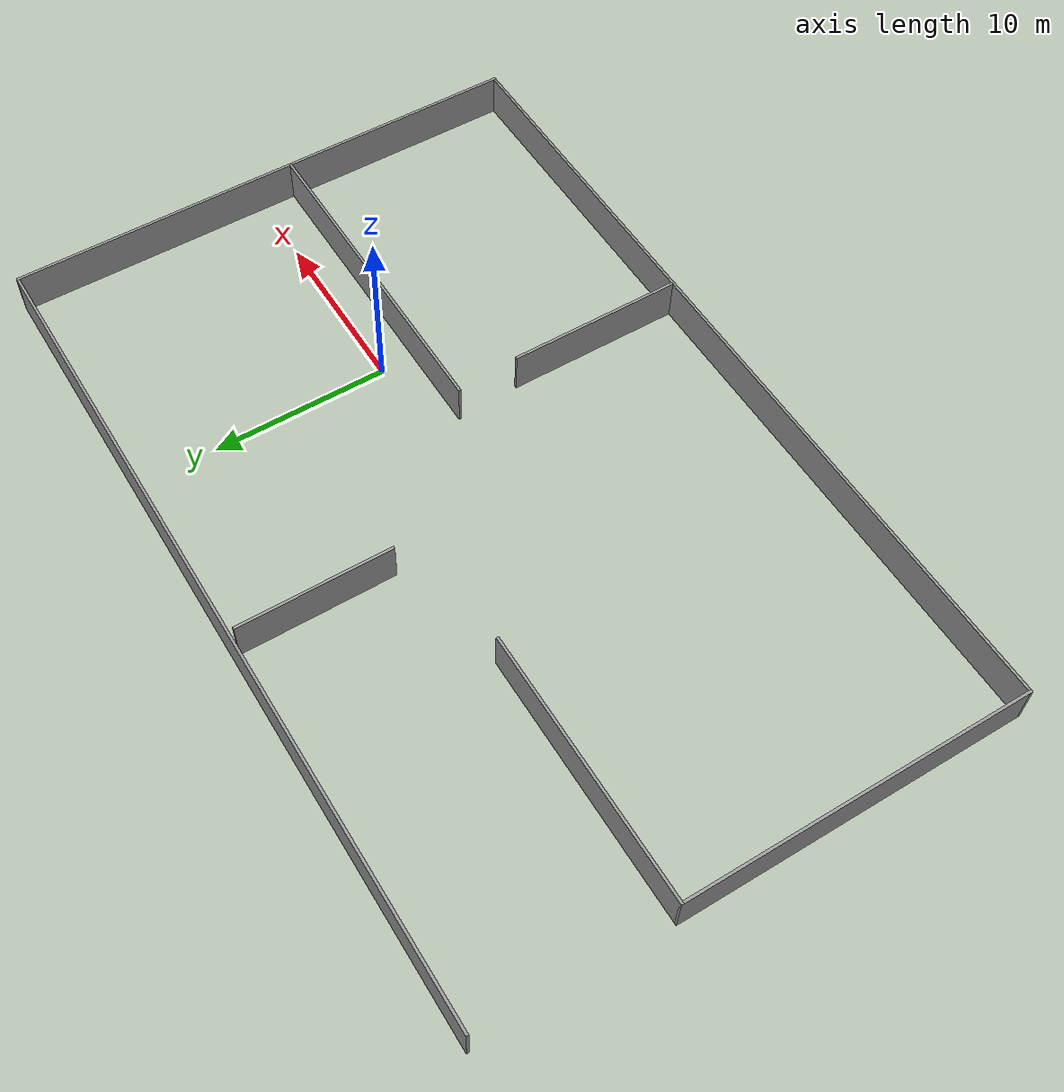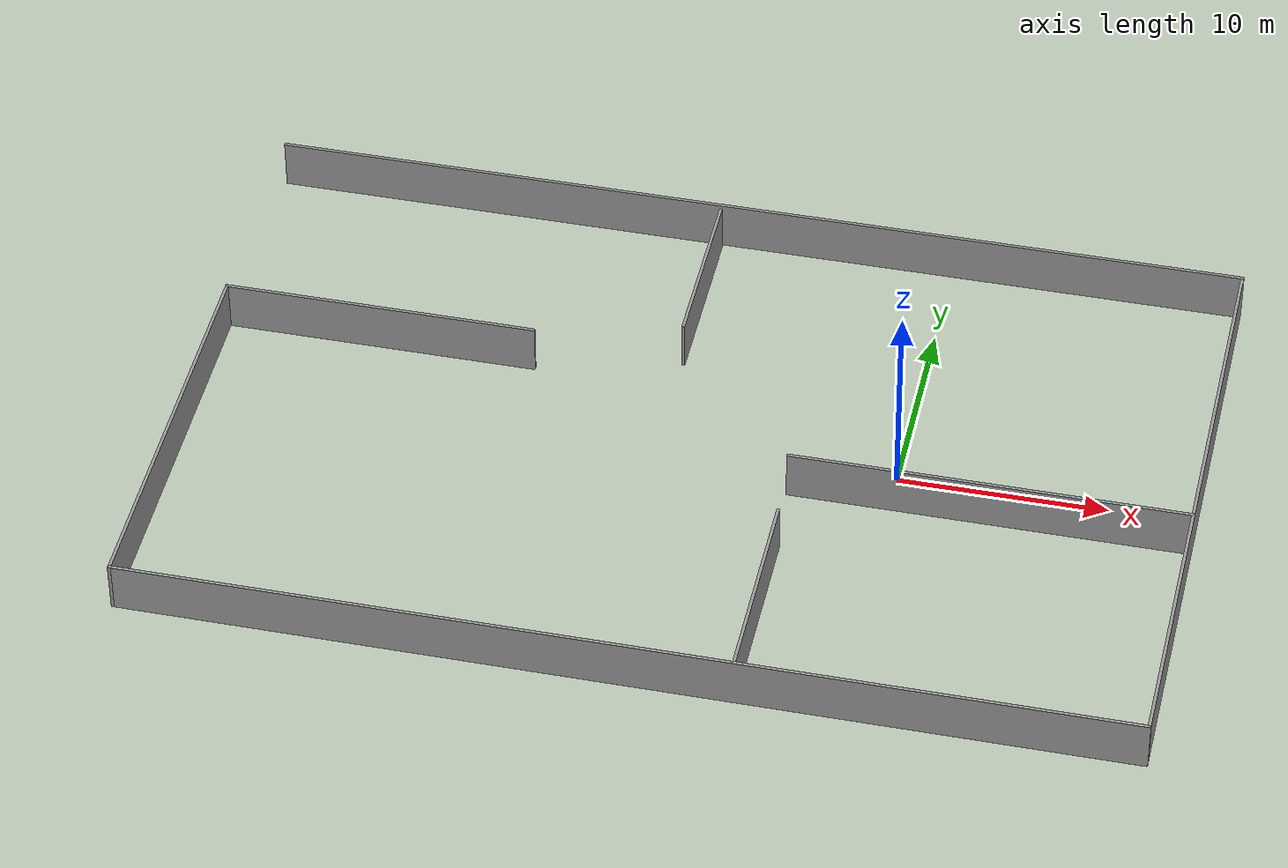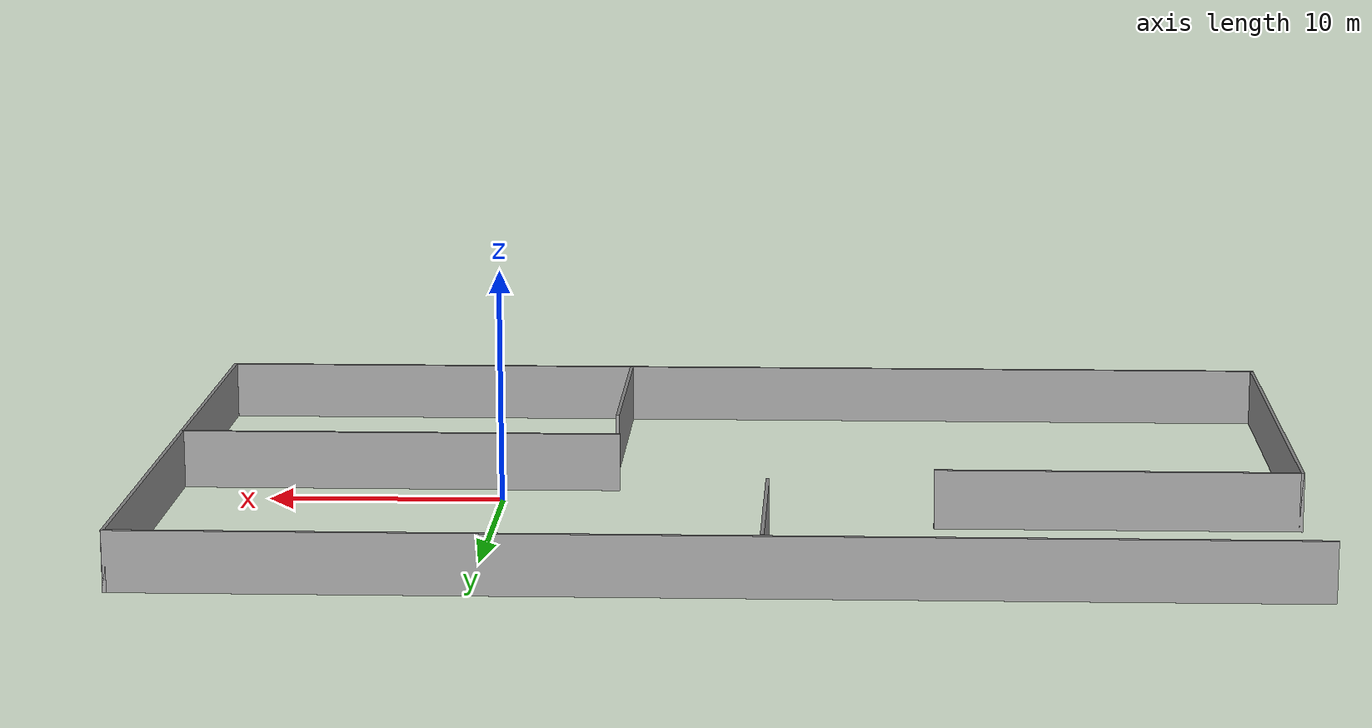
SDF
<?xml version='1.0'?>
<sdf version='1.7'>
  <model name='world'>
    <pose>-9.70447 -0.465234 0 0 -0 0</pose>
    <link name='Wall_23'>
      <collision name='Wall_23_Collision'>
        <geometry>
          <box>
            <size>47.75 0.15 2.5</size>
          </box>
        </geometry>
        <pose>0 0 1.25 0 -0 0</pose>
      </collision>
      <visual name='Wall_23_Visual'>
        <pose>0 0 1.25 0 -0 0</pose>
        <geometry>
          <box>
            <size>47.75 0.15 2.5</size>
          </box>
        </geometry>
        <material>
          <script>
            <uri>file://media/materials/scripts/gazebo.material</uri>
            <name>Gazebo/Grey</name>
          </script>
          <ambient>1 1 1 1</ambient>
        </material>
        <meta>
          <layer>0</layer>
        </meta>
      </visual>
      <pose>0 15.175 0 0 -0 0</pose>
    </link>
    <link name='Wall_24'>
      <collision name='Wall_24_Collision'>
        <geometry>
          <box>
            <size>30.5 0.15 2.5</size>
          </box>
        </geometry>
        <pose>0 0 1.25 0 -0 0</pose>
      </collision>
      <visual name='Wall_24_Visual'>
        <pose>0 0 1.25 0 -0 0</pose>
        <geometry>
          <box>
            <size>30.5 0.15 2.5</size>
          </box>
        </geometry>
        <material>
          <script>
            <uri>file://media/materials/scripts/gazebo.material</uri>
            <name>Gazebo/Grey</name>
          </script>
          <ambient>1 1 1 1</ambient>
        </material>
        <meta>
          <layer>0</layer>
        </meta>
      </visual>
      <pose>23.8 -0 0 0 -0 -1.5708</pose>
    </link>
    <link name='Wall_25'>
      <collision name='Wall_25_Collision'>
        <geometry>
          <box>
            <size>47.75 0.15 2.5</size>
          </box>
        </geometry>
        <pose>0 0 1.25 0 -0 0</pose>
      </collision>
      <visual name='Wall_25_Visual'>
        <pose>0 0 1.25 0 -0 0</pose>
        <geometry>
          <box>
            <size>47.75 0.15 2.5</size>
          </box>
        </geometry>
        <material>
          <script>
            <uri>file://media/materials/scripts/gazebo.material</uri>
            <name>Gazebo/Grey</name>
          </script>
          <ambient>1 1 1 1</ambient>
        </material>
        <meta>
          <layer>0</layer>
        </meta>
      </visual>
      <pose>0 -15.175 0 0 -0 3.14159</pose>
    </link>
    <link name='Wall_26'>
      <collision name='Wall_26_Collision'>
        <geometry>
          <box>
            <size>19.75 0.15 2.5</size>
          </box>
        </geometry>
        <pose>0 0 1.25 0 -0 0</pose>
      </collision>
      <visual name='Wall_26_Visual'>
        <pose>0 0 1.25 0 -0 0</pose>
        <geometry>
          <box>
            <size>19.75 0.15 2.5</size>
          </box>
        </geometry>
        <material>
          <script>
            <uri>file://media/materials/scripts/gazebo.material</uri>
            <name>Gazebo/Grey</name>
          </script>
          <ambient>1 1 1 1</ambient>
        </material>
        <meta>
          <layer>0</layer>
        </meta>
      </visual>
      <pose>-23.8 -5.375 0 0 -0 1.5708</pose>
    </link>
    <link name='Wall_29'>
      <collision name='Wall_29_Collision'>
        <geometry>
          <box>
            <size>19 0.15 2.5</size>
          </box>
        </geometry>
        <pose>0 0 1.25 0 -0 0</pose>
      </collision>
      <visual name='Wall_29_Visual'>
        <pose>0 0 1.25 0 -0 0</pose>
        <geometry>
          <box>
            <size>19 0.15 2.5</size>
          </box>
        </geometry>
        <material>
          <script>
            <uri>file://media/materials/scripts/gazebo.material</uri>
            <name>Gazebo/Grey</name>
          </script>
          <ambient>1 1 1 1</ambient>
        </material>
        <meta>
          <layer>0</layer>
        </meta>
      </visual>
      <pose>14.3058 -1.51788 0 0 -0 3.14159</pose>
    </link>
    <link name='Wall_33'>
      <collision name='Wall_33_Collision'>
        <geometry>
          <box>
            <size>10 0.15 2.5</size>
          </box>
        </geometry>
        <pose>0 0 1.25 0 -0 0</pose>
      </collision>
      <visual name='Wall_33_Visual'>
        <pose>0 0 1.25 0 -0 0</pose>
        <geometry>
          <box>
            <size>10 0.15 2.5</size>
          </box>
        </geometry>
        <material>
          <script>
            <uri>file://media/materials/scripts/gazebo.material</uri>
            <name>Gazebo/Grey</name>
          </script>
          <ambient>1 1 1 1</ambient>
        </material>
        <meta>
          <layer>0</layer>
        </meta>
      </visual>
      <pose>5.13235 -10.1394 0 0 -0 1.5708</pose>
    </link>
    <link name='Wall_36'>
      <collision name='Wall_36_Collision'>
        <geometry>
          <box>
            <size>15.25 0.15 2.5</size>
          </box>
        </geometry>
        <pose>0 0 1.25 0 -0 0</pose>
      </collision>
      <visual name='Wall_36_Visual'>
        <pose>0 0 1.25 0 -0 0</pose>
        <geometry>
          <box>
            <size>15.25 0.15 2.5</size>
          </box>
        </geometry>
        <material>
          <script>
            <uri>file://media/materials/scripts/gazebo.material</uri>
            <name>Gazebo/Grey</name>
          </script>
          <ambient>1 1 1 1</ambient>
        </material>
        <meta>
          <layer>0</layer>
        </meta>
      </visual>
      <pose>-16.25 4.425 0 0 -0 0</pose>
    </link>
    <link name='Wall_38'>
      <collision name='Wall_38_Collision'>
        <geometry>
          <box>
            <size>8.75 0.15 2.5</size>
          </box>
        </geometry>
        <pose>0 0 1.25 0 -0 0</pose>
      </collision>
      <visual name='Wall_38_Visual'>
        <pose>0 0 1.25 0 -0 0</pose>
        <geometry>
          <box>
            <size>8.75 0.15 2.5</size>
          </box>
        </geometry>
        <material>
          <script>
            <uri>file://media/materials/scripts/gazebo.material</uri>
            <name>Gazebo/Grey</name>
          </script>
          <ambient>1 1 1 1</ambient>
        </material>
        <meta>
          <layer>0</layer>
        </meta>
      </visual>
      <pose>-1.76399 10.4974 0 0 -0 -1.5708</pose>
    </link>
    <static>1</static>
  </model>
</sdf>
